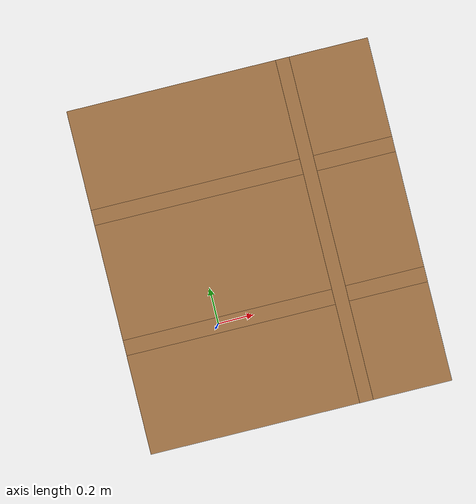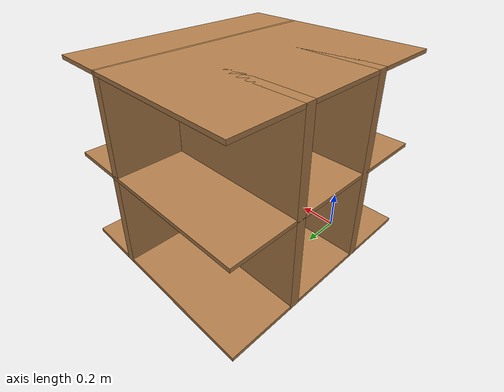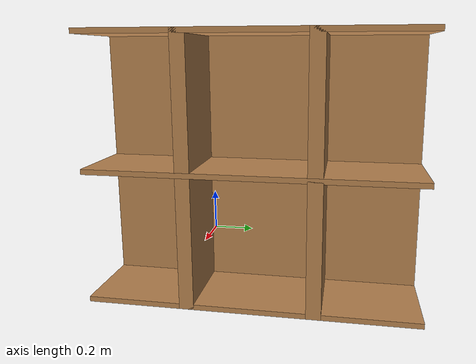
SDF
<?xml version='1.0'?>
<sdf version='1.6'>
  <model name='cabinet'>
    <link name='cabinet_bottom_plate'>
      <pose frame=''>0.32076 0.360854 0 0 -0 0</pose>
      <inertial>
        <pose frame=''>0 0 -0.02 0 -0 0</pose>
        <inertia>
          <ixx>21.2976</ixx>
          <ixy>0</ixy>
          <ixz>0</ixz>
          <iyy>16.4282</iyy>
          <iyz>0</iyz>
          <izz>37.7147</izz>
        </inertia>
        <mass>166.71</mass>
      </inertial>
      <self_collide>0</self_collide>
      <kinematic>0</kinematic>
      <visual name='cabinet_bottom_plate_geom_visual'>
        <pose frame=''>0 0 0.01 0 -0 0</pose>
        <geometry>
          <box>
            <size>1.08726 1.23799 0.02</size>
          </box>
        </geometry>
        <material>
          <script>
            <uri>file://media/materials/scripts/gazebo.material</uri>
            <name>Gazebo/Wood</name>
          </script>
          <shader type='pixel'/>
          <ambient>1 1 1 1</ambient>
          <diffuse>1 1 1 1</diffuse>
          <specular>0.2 0.2 0.2 1</specular>
          <emissive>0 0 0 1</emissive>
        </material>
        <transparency>0</transparency>
        <cast_shadows>1</cast_shadows>
      </visual>
      <visual name='cabinet_bottom_plate_geom_cabinet_back_plate_visual'>
        <pose frame=''>0.235 0 0.51 0 -0 0</pose>
        <geometry>
          <box>
            <size>0.049005 1.23799 1.02</size>
          </box>
        </geometry>
        <material>
          <script>
            <uri>file://media/materials/scripts/gazebo.material</uri>
            <name>Gazebo/Wood</name>
          </script>
          <shader type='pixel'/>
          <ambient>1 1 1 1</ambient>
          <diffuse>1 1 1 1</diffuse>
          <specular>0.2 0.2 0.2 1</specular>
          <emissive>0 0 0 1</emissive>
        </material>
        <transparency>0</transparency>
        <cast_shadows>1</cast_shadows>
      </visual>
      <visual name='cabinet_bottom_plate_geom_cabinet_left_plate_visual'>
        <pose frame=''>0 0.235 0.51 0 -0 0</pose>
        <geometry>
          <box>
            <size>1.08726 0.055022 1.02</size>
          </box>
        </geometry>
        <material>
          <script>
            <uri>file://media/materials/scripts/gazebo.material</uri>
            <name>Gazebo/Wood</name>
          </script>
          <shader type='pixel'/>
          <ambient>1 1 1 1</ambient>
          <diffuse>1 1 1 1</diffuse>
          <specular>0.2 0.2 0.2 1</specular>
          <emissive>0 0 0 1</emissive>
        </material>
        <transparency>0</transparency>
        <cast_shadows>1</cast_shadows>
      </visual>
      <visual name='cabinet_bottom_plate_geom_cabinet_middle_plate_visual'>
        <pose frame=''>0 0 0.51 0 -0 0</pose>
        <geometry>
          <box>
            <size>1.08726 1.23799 0.02</size>
          </box>
        </geometry>
        <material>
          <script>
            <uri>file://media/materials/scripts/gazebo.material</uri>
            <name>Gazebo/Wood</name>
          </script>
          <shader type='pixel'/>
          <ambient>1 1 1 1</ambient>
          <diffuse>1 1 1 1</diffuse>
          <specular>0.2 0.2 0.2 1</specular>
          <emissive>0 0 0 1</emissive>
        </material>
        <transparency>0</transparency>
        <cast_shadows>1</cast_shadows>
      </visual>
      <visual name='cabinet_bottom_plate_geom_cabinet_right_plate_visual'>
        <pose frame=''>0 -0.235 0.51 0 -0 0</pose>
        <geometry>
          <box>
            <size>1.08726 0.055022 1.02</size>
          </box>
        </geometry>
        <material>
          <script>
            <uri>file://media/materials/scripts/gazebo.material</uri>
            <name>Gazebo/Wood</name>
          </script>
          <shader type='pixel'/>
          <ambient>1 1 1 1</ambient>
          <diffuse>1 1 1 1</diffuse>
          <specular>0.2 0.2 0.2 1</specular>
          <emissive>0 0 0 1</emissive>
        </material>
        <transparency>0</transparency>
        <cast_shadows>1</cast_shadows>
      </visual>
      <visual name='cabinet_bottom_plate_geom_cabinet_top_plate_visual'>
        <pose frame=''>0 0 1.01 0 -0 0</pose>
        <geometry>
          <box>
            <size>1.08726 1.23799 0.02</size>
          </box>
        </geometry>
        <material>
          <script>
            <uri>file://media/materials/scripts/gazebo.material</uri>
            <name>Gazebo/Wood</name>
          </script>
          <shader type='pixel'/>
          <ambient>1 1 1 1</ambient>
          <diffuse>1 1 1 1</diffuse>
          <specular>0.2 0.2 0.2 1</specular>
          <emissive>0 0 0 1</emissive>
        </material>
        <transparency>0</transparency>
        <cast_shadows>1</cast_shadows>
      </visual>
      <collision name='cabinet_bottom_plate_geom'>
        <laser_retro>0</laser_retro>
        <max_contacts>10</max_contacts>
        <pose frame=''>0 0 0.01 0 -0 0</pose>
        <geometry>
          <box>
            <size>1.08726 1.23799 0.02</size>
          </box>
        </geometry>
        <surface>
          <friction>
            <ode>
              <mu>1</mu>
              <mu2>1</mu2>
              <fdir1>0 0 0</fdir1>
              <slip1>0</slip1>
              <slip2>0</slip2>
            </ode>
            <torsional>
              <coefficient>1</coefficient>
              <patch_radius>0</patch_radius>
              <surface_radius>0</surface_radius>
              <use_patch_radius>1</use_patch_radius>
              <ode>
                <slip>0</slip>
              </ode>
            </torsional>
          </friction>
          <bounce>
            <restitution_coefficient>0</restitution_coefficient>
            <threshold>1e+06</threshold>
          </bounce>
          <contact>
            <collide_without_contact>0</collide_without_contact>
            <collide_without_contact_bitmask>1</collide_without_contact_bitmask>
            <collide_bitmask>1</collide_bitmask>
            <ode>
              <soft_cfm>0</soft_cfm>
              <soft_erp>0.2</soft_erp>
              <kp>1e+13</kp>
              <kd>1</kd>
              <max_vel>0.01</max_vel>
              <min_depth>0</min_depth>
            </ode>
            <bullet>
              <split_impulse>1</split_impulse>
              <split_impulse_penetration_threshold>-0.01</split_impulse_penetration_threshold>
              <soft_cfm>0</soft_cfm>
              <soft_erp>0.2</soft_erp>
              <kp>1e+13</kp>
              <kd>1</kd>
            </bullet>
          </contact>
        </surface>
      </collision>
      <collision name='cabinet_bottom_plate_geom_cabinet_back_plate'>
        <laser_retro>0</laser_retro>
        <max_contacts>10</max_contacts>
        <pose frame=''>0.235 0 0.51 0 -0 0</pose>
        <geometry>
          <box>
            <size>0.049005 1.23799 1.02</size>
          </box>
        </geometry>
        <surface>
          <friction>
            <ode>
              <mu>1</mu>
              <mu2>1</mu2>
              <fdir1>0 0 0</fdir1>
              <slip1>0</slip1>
              <slip2>0</slip2>
            </ode>
            <torsional>
              <coefficient>1</coefficient>
              <patch_radius>0</patch_radius>
              <surface_radius>0</surface_radius>
              <use_patch_radius>1</use_patch_radius>
              <ode>
                <slip>0</slip>
              </ode>
            </torsional>
          </friction>
          <bounce>
            <restitution_coefficient>0</restitution_coefficient>
            <threshold>1e+06</threshold>
          </bounce>
          <contact>
            <collide_without_contact>0</collide_without_contact>
            <collide_without_contact_bitmask>1</collide_without_contact_bitmask>
            <collide_bitmask>1</collide_bitmask>
            <ode>
              <soft_cfm>0</soft_cfm>
              <soft_erp>0.2</soft_erp>
              <kp>1e+13</kp>
              <kd>1</kd>
              <max_vel>0.01</max_vel>
              <min_depth>0</min_depth>
            </ode>
            <bullet>
              <split_impulse>1</split_impulse>
              <split_impulse_penetration_threshold>-0.01</split_impulse_penetration_threshold>
              <soft_cfm>0</soft_cfm>
              <soft_erp>0.2</soft_erp>
              <kp>1e+13</kp>
              <kd>1</kd>
            </bullet>
          </contact>
        </surface>
      </collision>
      <collision name='cabinet_bottom_plate_geom_cabinet_left_plate'>
        <laser_retro>0</laser_retro>
        <max_contacts>10</max_contacts>
        <pose frame=''>0 0.235 0.51 0 -0 0</pose>
        <geometry>
          <box>
            <size>1.08726 0.055022 1.02</size>
          </box>
        </geometry>
        <surface>
          <friction>
            <ode>
              <mu>1</mu>
              <mu2>1</mu2>
              <fdir1>0 0 0</fdir1>
              <slip1>0</slip1>
              <slip2>0</slip2>
            </ode>
            <torsional>
              <coefficient>1</coefficient>
              <patch_radius>0</patch_radius>
              <surface_radius>0</surface_radius>
              <use_patch_radius>1</use_patch_radius>
              <ode>
                <slip>0</slip>
              </ode>
            </torsional>
          </friction>
          <bounce>
            <restitution_coefficient>0</restitution_coefficient>
            <threshold>1e+06</threshold>
          </bounce>
          <contact>
            <collide_without_contact>0</collide_without_contact>
            <collide_without_contact_bitmask>1</collide_without_contact_bitmask>
            <collide_bitmask>1</collide_bitmask>
            <ode>
              <soft_cfm>0</soft_cfm>
              <soft_erp>0.2</soft_erp>
              <kp>1e+13</kp>
              <kd>1</kd>
              <max_vel>0.01</max_vel>
              <min_depth>0</min_depth>
            </ode>
            <bullet>
              <split_impulse>1</split_impulse>
              <split_impulse_penetration_threshold>-0.01</split_impulse_penetration_threshold>
              <soft_cfm>0</soft_cfm>
              <soft_erp>0.2</soft_erp>
              <kp>1e+13</kp>
              <kd>1</kd>
            </bullet>
          </contact>
        </surface>
      </collision>
      <collision name='cabinet_bottom_plate_geom_cabinet_middle_plate'>
        <laser_retro>0</laser_retro>
        <max_contacts>10</max_contacts>
        <pose frame=''>0 0 0.51 0 -0 0</pose>
        <geometry>
          <box>
            <size>1.08726 1.23799 0.02</size>
          </box>
        </geometry>
        <surface>
          <friction>
            <ode>
              <mu>1</mu>
              <mu2>1</mu2>
              <fdir1>0 0 0</fdir1>
              <slip1>0</slip1>
              <slip2>0</slip2>
            </ode>
            <torsional>
              <coefficient>1</coefficient>
              <patch_radius>0</patch_radius>
              <surface_radius>0</surface_radius>
              <use_patch_radius>1</use_patch_radius>
              <ode>
                <slip>0</slip>
              </ode>
            </torsional>
          </friction>
          <bounce>
            <restitution_coefficient>0</restitution_coefficient>
            <threshold>1e+06</threshold>
          </bounce>
          <contact>
            <collide_without_contact>0</collide_without_contact>
            <collide_without_contact_bitmask>1</collide_without_contact_bitmask>
            <collide_bitmask>1</collide_bitmask>
            <ode>
              <soft_cfm>0</soft_cfm>
              <soft_erp>0.2</soft_erp>
              <kp>1e+13</kp>
              <kd>1</kd>
              <max_vel>0.01</max_vel>
              <min_depth>0</min_depth>
            </ode>
            <bullet>
              <split_impulse>1</split_impulse>
              <split_impulse_penetration_threshold>-0.01</split_impulse_penetration_threshold>
              <soft_cfm>0</soft_cfm>
              <soft_erp>0.2</soft_erp>
              <kp>1e+13</kp>
              <kd>1</kd>
            </bullet>
          </contact>
        </surface>
      </collision>
      <collision name='cabinet_bottom_plate_geom_cabinet_right_plate'>
        <laser_retro>0</laser_retro>
        <max_contacts>10</max_contacts>
        <pose frame=''>0 -0.235 0.51 0 -0 0</pose>
        <geometry>
          <box>
            <size>1.08726 0.055022 1.02</size>
          </box>
        </geometry>
        <surface>
          <friction>
            <ode>
              <mu>1</mu>
              <mu2>1</mu2>
              <fdir1>0 0 0</fdir1>
              <slip1>0</slip1>
              <slip2>0</slip2>
            </ode>
            <torsional>
              <coefficient>1</coefficient>
              <patch_radius>0</patch_radius>
              <surface_radius>0</surface_radius>
              <use_patch_radius>1</use_patch_radius>
              <ode>
                <slip>0</slip>
              </ode>
            </torsional>
          </friction>
          <bounce>
            <restitution_coefficient>0</restitution_coefficient>
            <threshold>1e+06</threshold>
          </bounce>
          <contact>
            <collide_without_contact>0</collide_without_contact>
            <collide_without_contact_bitmask>1</collide_without_contact_bitmask>
            <collide_bitmask>1</collide_bitmask>
            <ode>
              <soft_cfm>0</soft_cfm>
              <soft_erp>0.2</soft_erp>
              <kp>1e+13</kp>
              <kd>1</kd>
              <max_vel>0.01</max_vel>
              <min_depth>0</min_depth>
            </ode>
            <bullet>
              <split_impulse>1</split_impulse>
              <split_impulse_penetration_threshold>-0.01</split_impulse_penetration_threshold>
              <soft_cfm>0</soft_cfm>
              <soft_erp>0.2</soft_erp>
              <kp>1e+13</kp>
              <kd>1</kd>
            </bullet>
          </contact>
        </surface>
      </collision>
      <collision name='cabinet_bottom_plate_geom_cabinet_top_plate'>
        <laser_retro>0</laser_retro>
        <max_contacts>10</max_contacts>
        <pose frame=''>0 0 1.01 0 -0 0</pose>
        <geometry>
          <box>
            <size>1.08726 1.23799 0.02</size>
          </box>
        </geometry>
        <surface>
          <friction>
            <ode>
              <mu>1</mu>
              <mu2>1</mu2>
              <fdir1>0 0 0</fdir1>
              <slip1>0</slip1>
              <slip2>0</slip2>
            </ode>
            <torsional>
              <coefficient>1</coefficient>
              <patch_radius>0</patch_radius>
              <surface_radius>0</surface_radius>
              <use_patch_radius>1</use_patch_radius>
              <ode>
                <slip>0</slip>
              </ode>
            </torsional>
          </friction>
          <bounce>
            <restitution_coefficient>0</restitution_coefficient>
            <threshold>1e+06</threshold>
          </bounce>
          <contact>
            <collide_without_contact>0</collide_without_contact>
            <collide_without_contact_bitmask>1</collide_without_contact_bitmask>
            <collide_bitmask>1</collide_bitmask>
            <ode>
              <soft_cfm>0</soft_cfm>
              <soft_erp>0.2</soft_erp>
              <kp>1e+13</kp>
              <kd>1</kd>
              <max_vel>0.01</max_vel>
              <min_depth>0</min_depth>
            </ode>
            <bullet>
              <split_impulse>1</split_impulse>
              <split_impulse_penetration_threshold>-0.01</split_impulse_penetration_threshold>
              <soft_cfm>0</soft_cfm>
              <soft_erp>0.2</soft_erp>
              <kp>1e+13</kp>
              <kd>1</kd>
            </bullet>
          </contact>
        </surface>
      </collision>
    </link>
    <static>1</static>
    <allow_auto_disable>1</allow_auto_disable>
  </model>
</sdf>
